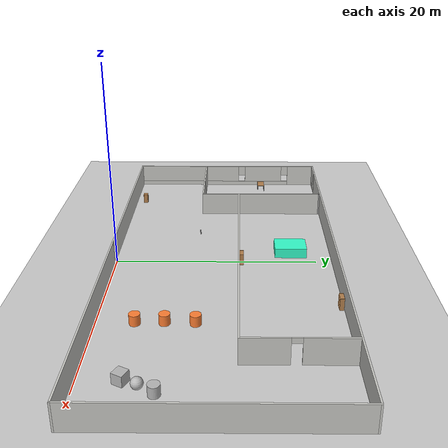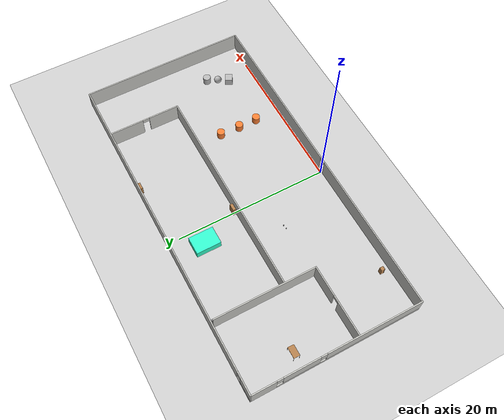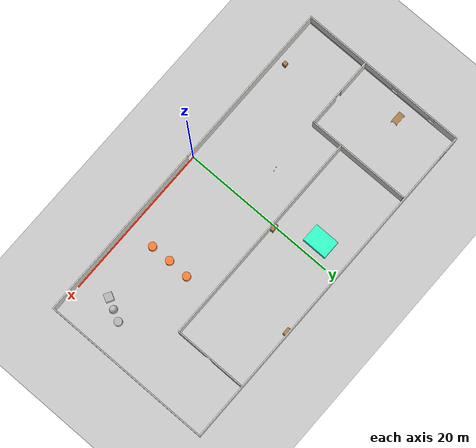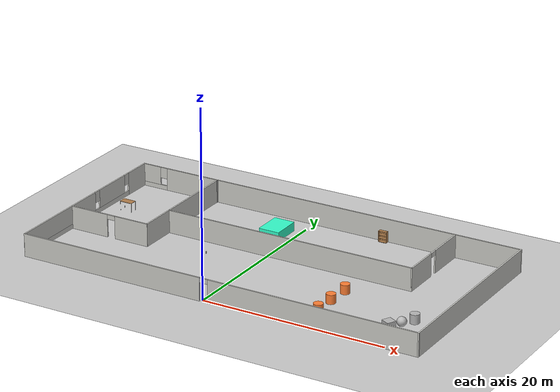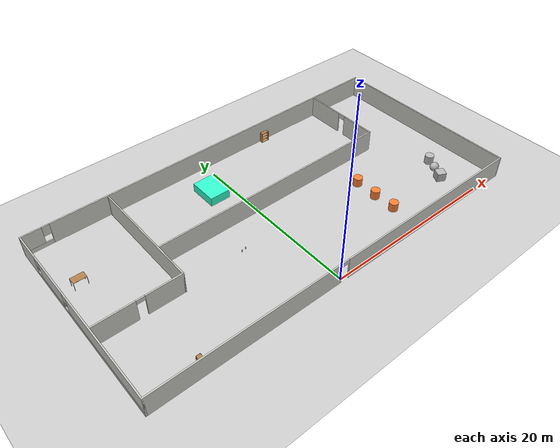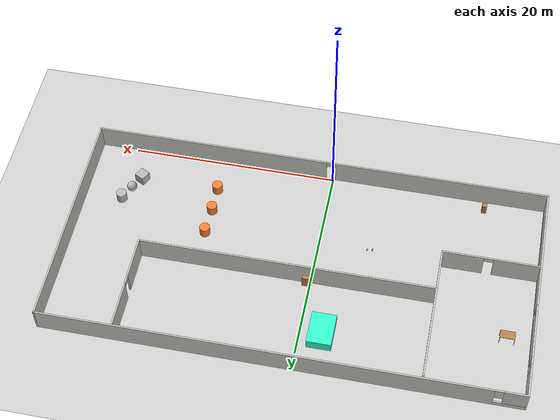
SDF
<sdf version="1.6">
 <world name="default">
  <model name="ground_plane">
   <static>1</static>
   <link name="link">
    <collision name="collision">
     <geometry><plane><normal>0 0 1</normal><size>100 100</size></plane></geometry>
     <surface><friction><ode><mu>100</mu><mu2>50</mu2></ode></friction></surface>
    </collision>
    <visual name="visual">
     <cast_shadows>0</cast_shadows>
     <geometry><plane><normal>0 0 1</normal><size>100 100</size></plane></geometry>
     <material>
      <script><uri>file://media/materials/scripts/gazebo.material</uri><name>Gazebo/Grey</name></script>
     </material>
    </visual>
   </link>
  </model>
  <gravity>0 0 -9.8</gravity>
  <magnetic_field>6e-06 2.3e-05 -4.2e-05</magnetic_field>
  <atmosphere type="adiabatic"/>
  <physics name="default_physics" default="0" type="ode">
   <max_step_size>0.001</max_step_size>
   <real_time_factor>1</real_time_factor>
   <real_time_update_rate>1000</real_time_update_rate>
  </physics>
  <scene><ambient>0.4 0.4 0.4 1</ambient><background>0.7 0.7 0.7 1</background><shadows>1</shadows></scene>
  <spherical_coordinates>
   <surface_model>EARTH_WGS84</surface_model>
   <latitude_deg>0</latitude_deg>
   <longitude_deg>0</longitude_deg>
   <elevation>0</elevation>
   <heading_deg>0</heading_deg>
  </spherical_coordinates>
  <model name="Surround">
   <pose>1.33795 10.7084 0 0 -0 0</pose>
   <link name="Wall_1">
    <pose>0 -10.925 0 0 -0 0</pose>
    <visual name="Wall_1_Visual_0">
     <pose>-11.9671 0 1.25 0 -0 0</pose>
     <geometry><box><size>20.8157 0.15 2.5</size></box></geometry>
     <material>
      <script><uri>file://media/materials/scripts/gazebo.material</uri><name>Gazebo/CeilingTiled</name></script>
      <ambient>1 1 1 1</ambient>
     </material>
    </visual>
    <collision name="Wall_1_Collision_0">
     <geometry><box><size>20.8157 0.15 2.5</size></box></geometry>
     <pose>-11.9671 0 1.25 0 -0 0</pose>
    </collision>
    <visual name="Wall_1_Visual_1">
     <pose>10.8579 0 1.25 0 -0 0</pose>
     <geometry><box><size>23.0343 0.15 2.5</size></box></geometry>
     <material>
      <script><uri>file://media/materials/scripts/gazebo.material</uri><name>Gazebo/CeilingTiled</name></script>
      <ambient>1 1 1 1</ambient>
     </material>
    </visual>
    <collision name="Wall_1_Collision_1">
     <geometry><box><size>23.0343 0.15 2.5</size></box></geometry>
     <pose>10.8579 0 1.25 0 -0 0</pose>
    </collision>
    <visual name="Wall_1_Visual_2">
     <pose>-1.10928 0 2.25 0 -0 0</pose>
     <geometry><box><size>0.9 0.15 0.5</size></box></geometry>
     <material>
      <script><uri>file://media/materials/scripts/gazebo.material</uri><name>Gazebo/CeilingTiled</name></script>
      <ambient>1 1 1 1</ambient>
     </material>
    </visual>
    <collision name="Wall_1_Collision_2">
     <geometry><box><size>0.9 0.15 0.5</size></box></geometry>
     <pose>-1.10928 0 2.25 0 -0 0</pose>
    </collision>
   </link>
   <link name="Wall_12">
    <collision name="Wall_12_Collision">
     <geometry><box><size>28.25 0.15 2.5</size></box></geometry>
     <pose>0 0 1.25 0 -0 0</pose>
    </collision>
    <visual name="Wall_12_Visual">
     <pose>0 0 1.25 0 -0 0</pose>
     <geometry><box><size>28.25 0.15 2.5</size></box></geometry>
     <material>
      <script><uri>file://media/materials/scripts/gazebo.material</uri><name>Gazebo/CeilingTiled</name></script>
      <ambient>1 1 1 1</ambient>
     </material>
    </visual>
    <pose>0.995703 1.50774 0 0 -0 0</pose>
   </link>
   <link name="Wall_13">
    <pose>15.0457 6.18274 0 0 -0 1.5708</pose>
    <visual name="Wall_13_Visual_0">
     <pose>-2.69981 0 1.25 0 -0 0</pose>
     <geometry><box><size>4.10038 0.15 2.5</size></box></geometry>
     <material>
      <script><uri>file://media/materials/scripts/gazebo.material</uri><name>Gazebo/CeilingTiled</name></script>
      <ambient>1 1 1 1</ambient>
     </material>
    </visual>
    <collision name="Wall_13_Collision_0">
     <geometry><box><size>4.10038 0.15 2.5</size></box></geometry>
     <pose>-2.69981 0 1.25 0 -0 0</pose>
    </collision>
    <visual name="Wall_13_Visual_1">
     <pose>2.50019 0 1.25 0 -0 0</pose>
     <geometry><box><size>4.49962 0.15 2.5</size></box></geometry>
     <material>
      <script><uri>file://media/materials/scripts/gazebo.material</uri><name>Gazebo/CeilingTiled</name></script>
      <ambient>1 1 1 1</ambient>
     </material>
    </visual>
    <collision name="Wall_13_Collision_1">
     <geometry><box><size>4.49962 0.15 2.5</size></box></geometry>
     <pose>2.50019 0 1.25 0 -0 0</pose>
    </collision>
    <visual name="Wall_13_Visual_2">
     <pose>-0.199616 0 2.25 0 -0 0</pose>
     <geometry><box><size>0.9 0.15 0.5</size></box></geometry>
     <material>
      <script><uri>file://media/materials/scripts/gazebo.material</uri><name>Gazebo/CeilingTiled</name></script>
      <ambient>1 1 1 1</ambient>
     </material>
    </visual>
    <collision name="Wall_13_Collision_2">
     <geometry><box><size>0.9 0.15 0.5</size></box></geometry>
     <pose>-0.199616 0 2.25 0 -0 0</pose>
    </collision>
   </link>
   <link name="Wall_2">
    <collision name="Wall_2_Collision">
     <geometry><box><size>22 0.15 2.5</size></box></geometry>
     <pose>0 0 1.25 0 -0 0</pose>
    </collision>
    <visual name="Wall_2_Visual">
     <pose>0 0 1.25 0 -0 0</pose>
     <geometry><box><size>22 0.15 2.5</size></box></geometry>
     <material>
      <script><uri>file://media/materials/scripts/gazebo.material</uri><name>Gazebo/CeilingTiled</name></script>
      <ambient>1 1 1 1</ambient>
     </material>
    </visual>
    <pose>22.3 0 0 0 -0 1.5708</pose>
   </link>
   <link name="Wall_3">
    <pose>0 10.925 0 0 -0 3.14159</pose>
    <visual name="Wall_3_Visual_0">
     <pose>-1.49293 0 1.25 0 -0 0</pose>
     <geometry><box><size>41.7641 0.15 2.5</size></box></geometry>
     <material>
      <script><uri>file://media/materials/scripts/gazebo.material</uri><name>Gazebo/CeilingTiled</name></script>
      <ambient>1 1 1 1</ambient>
     </material>
    </visual>
    <collision name="Wall_3_Collision_0">
     <geometry><box><size>41.7641 0.15 2.5</size></box></geometry>
     <pose>-1.49293 0 1.25 0 -0 0</pose>
    </collision>
    <visual name="Wall_3_Visual_1">
     <pose>20.8821 0 0.25 0 -0 0</pose>
     <geometry><box><size>2.98586 0.15 0.5</size></box></geometry>
     <material>
      <script><uri>file://media/materials/scripts/gazebo.material</uri><name>Gazebo/CeilingTiled</name></script>
      <ambient>1 1 1 1</ambient>
     </material>
    </visual>
    <collision name="Wall_3_Collision_1">
     <geometry><box><size>2.98586 0.15 0.5</size></box></geometry>
     <pose>20.8821 0 0.25 0 -0 0</pose>
    </collision>
    <visual name="Wall_3_Visual_2">
     <pose>21.2821 0 1.5 0 -0 0</pose>
     <geometry><box><size>2.18586 0.15 2</size></box></geometry>
     <material>
      <script><uri>file://media/materials/scripts/gazebo.material</uri><name>Gazebo/CeilingTiled</name></script>
      <ambient>1 1 1 1</ambient>
     </material>
    </visual>
    <collision name="Wall_3_Collision_2">
     <geometry><box><size>2.18586 0.15 2</size></box></geometry>
     <pose>21.2821 0 1.5 0 -0 0</pose>
    </collision>
    <visual name="Wall_3_Visual_3">
     <pose>19.7891 0 1.9 0 -0 0</pose>
     <geometry><box><size>0.8 0.15 1.2</size></box></geometry>
     <material>
      <script><uri>file://media/materials/scripts/gazebo.material</uri><name>Gazebo/CeilingTiled</name></script>
      <ambient>1 1 1 1</ambient>
     </material>
    </visual>
    <collision name="Wall_3_Collision_3">
     <geometry><box><size>0.8 0.15 1.2</size></box></geometry>
     <pose>19.7891 0 1.9 0 -0 0</pose>
    </collision>
   </link>
   <link name="Wall_4">
    <pose>-22.3 0 0 0 0 -1.5708</pose>
    <visual name="Wall_4_Visual_0">
     <pose>-9.3662 0 1.25 0 -0 0</pose>
     <geometry><box><size>3.2676 0.15 2.5</size></box></geometry>
     <material>
      <script><uri>file://media/materials/scripts/gazebo.material</uri><name>Gazebo/CeilingTiled</name></script>
      <ambient>1 1 1 1</ambient>
     </material>
    </visual>
    <collision name="Wall_4_Collision_0">
     <geometry><box><size>3.2676 0.15 2.5</size></box></geometry>
     <pose>-9.3662 0 1.25 0 -0 0</pose>
    </collision>
    <visual name="Wall_4_Visual_1">
     <pose>1.6338 0 0.25 0 -0 0</pose>
     <geometry><box><size>18.7324 0.15 0.5</size></box></geometry>
     <material>
      <script><uri>file://media/materials/scripts/gazebo.material</uri><name>Gazebo/CeilingTiled</name></script>
      <ambient>1 1 1 1</ambient>
     </material>
    </visual>
    <collision name="Wall_4_Collision_1">
     <geometry><box><size>18.7324 0.15 0.5</size></box></geometry>
     <pose>1.6338 0 0.25 0 -0 0</pose>
    </collision>
    <visual name="Wall_4_Visual_2">
     <pose>-4.60825 0 1.5 0 -0 0</pose>
     <geometry><box><size>4.64829 0.15 2</size></box></geometry>
     <material>
      <script><uri>file://media/materials/scripts/gazebo.material</uri><name>Gazebo/CeilingTiled</name></script>
      <ambient>1 1 1 1</ambient>
     </material>
    </visual>
    <collision name="Wall_4_Collision_2">
     <geometry><box><size>4.64829 0.15 2</size></box></geometry>
     <pose>-4.60825 0 1.5 0 -0 0</pose>
    </collision>
    <visual name="Wall_4_Visual_3">
     <pose>4.75795 0 1.5 0 -0 0</pose>
     <geometry><box><size>12.4841 0.15 2</size></box></geometry>
     <material>
      <script><uri>file://media/materials/scripts/gazebo.material</uri><name>Gazebo/CeilingTiled</name></script>
      <ambient>1 1 1 1</ambient>
     </material>
    </visual>
    <collision name="Wall_4_Collision_3">
     <geometry><box><size>12.4841 0.15 2</size></box></geometry>
     <pose>4.75795 0 1.5 0 -0 0</pose>
    </collision>
    <visual name="Wall_4_Visual_4">
     <pose>-7.3324 0 1.9 0 -0 0</pose>
     <geometry><box><size>0.8 0.15 1.2</size></box></geometry>
     <material>
      <script><uri>file://media/materials/scripts/gazebo.material</uri><name>Gazebo/CeilingTiled</name></script>
      <ambient>1 1 1 1</ambient>
     </material>
    </visual>
    <collision name="Wall_4_Collision_4">
     <geometry><box><size>0.8 0.15 1.2</size></box></geometry>
     <pose>-7.3324 0 1.9 0 -0 0</pose>
    </collision>
    <visual name="Wall_4_Visual_5">
     <pose>-1.8841 0 1.9 0 -0 0</pose>
     <geometry><box><size>0.8 0.15 1.2</size></box></geometry>
     <material>
      <script><uri>file://media/materials/scripts/gazebo.material</uri><name>Gazebo/CeilingTiled</name></script>
      <ambient>1 1 1 1</ambient>
     </material>
    </visual>
    <collision name="Wall_4_Collision_5">
     <geometry><box><size>0.8 0.15 1.2</size></box></geometry>
     <pose>-1.8841 0 1.9 0 -0 0</pose>
    </collision>
   </link>
   <link name="Wall_6">
    <pose>-17.6449 -2.64435 0 0 -0 0</pose>
    <visual name="Wall_6_Visual_0">
     <pose>-2.43922 0 1.25 0 -0 0</pose>
     <geometry><box><size>4.37157 0.15 2.5</size></box></geometry>
     <material>
      <script><uri>file://media/materials/scripts/gazebo.material</uri><name>Gazebo/CeilingTiled</name></script>
      <ambient>1 1 1 1</ambient>
     </material>
    </visual>
    <collision name="Wall_6_Collision_0">
     <geometry><box><size>4.37157 0.15 2.5</size></box></geometry>
     <pose>-2.43922 0 1.25 0 -0 0</pose>
    </collision>
    <visual name="Wall_6_Visual_1">
     <pose>2.63578 0 1.25 0 -0 0</pose>
     <geometry><box><size>3.97843 0.15 2.5</size></box></geometry>
     <material>
      <script><uri>file://media/materials/scripts/gazebo.material</uri><name>Gazebo/CeilingTiled</name></script>
      <ambient>1 1 1 1</ambient>
     </material>
    </visual>
    <collision name="Wall_6_Collision_1">
     <geometry><box><size>3.97843 0.15 2.5</size></box></geometry>
     <pose>2.63578 0 1.25 0 -0 0</pose>
    </collision>
    <visual name="Wall_6_Visual_2">
     <pose>0.196568 0 2.25 0 -0 0</pose>
     <geometry><box><size>0.9 0.15 0.5</size></box></geometry>
     <material>
      <script><uri>file://media/materials/scripts/gazebo.material</uri><name>Gazebo/CeilingTiled</name></script>
      <ambient>1 1 1 1</ambient>
     </material>
    </visual>
    <collision name="Wall_6_Collision_2">
     <geometry><box><size>0.9 0.15 0.5</size></box></geometry>
     <pose>0.196568 0 2.25 0 -0 0</pose>
    </collision>
   </link>
   <link name="Wall_7">
    <collision name="Wall_7_Collision">
     <geometry><box><size>13.5 0.15 2.5</size></box></geometry>
     <pose>0 0 1.25 0 -0 0</pose>
    </collision>
    <visual name="Wall_7_Visual">
     <pose>0 0 1.25 0 -0 0</pose>
     <geometry><box><size>13.5 0.15 2.5</size></box></geometry>
     <material>
      <script><uri>file://media/materials/scripts/gazebo.material</uri><name>Gazebo/CeilingTiled</name></script>
      <ambient>1 1 1 1</ambient>
     </material>
    </visual>
    <pose>-13.0949 4.03065 0 0 -0 1.5708</pose>
   </link>
   <link name="Wall_9">
    <collision name="Wall_9_Collision">
     <geometry><box><size>0.25 0.15 2.5</size></box></geometry>
     <pose>0 0 1.25 0 -0 0</pose>
    </collision>
    <visual name="Wall_9_Visual">
     <pose>0 0 1.25 0 -0 0</pose>
     <geometry><box><size>0.25 0.15 2.5</size></box></geometry>
     <material>
      <script><uri>file://media/materials/scripts/gazebo.material</uri><name>Gazebo/Grey</name></script>
      <ambient>1 1 1 1</ambient>
     </material>
    </visual>
    <pose>-13.0819 10.7539 0 0 -0 1.309</pose>
   </link>
   <static>1</static>
  </model>
  <model name="table">
   <static>0</static>
   <link name="link">
    <collision name="surface">
     <pose>0 0 1 0 -0 0</pose>
     <geometry><box><size>1.5 0.8 0.03</size></box></geometry>
     <surface><friction><ode><mu>0.6</mu><mu2>0.6</mu2></ode></friction></surface>
    </collision>
    <visual name="visual1">
     <pose>0 0 1 0 -0 0</pose>
     <geometry><box><size>1.4 0.8 0.04</size></box></geometry>
     <material>
      <script><uri>file://media/materials/scripts/gazebo.material</uri><name>Gazebo/Wood</name></script>
     </material>
    </visual>
    <collision name="front_left_leg">
     <pose>0.68 0.38 0.5 0 -0 0</pose>
     <geometry><cylinder><radius>0.02</radius><length>1</length></cylinder></geometry>
    </collision>
    <visual name="front_left_leg">
     <pose>0.68 0.38 0.5 0 -0 0</pose>
     <geometry><cylinder><radius>0.02</radius><length>1</length></cylinder></geometry>
     <material>
      <script><uri>file://media/materials/scripts/gazebo.material</uri><name>Gazebo/Grey</name></script>
     </material>
    </visual>
    <collision name="front_right_leg">
     <pose>0.68 -0.38 0.5 0 -0 0</pose>
     <geometry><cylinder><radius>0.02</radius><length>1</length></cylinder></geometry>
    </collision>
    <visual name="front_right_leg">
     <pose>0.68 -0.38 0.5 0 -0 0</pose>
     <geometry><cylinder><radius>0.02</radius><length>1</length></cylinder></geometry>
     <material>
      <script><uri>file://media/materials/scripts/gazebo.material</uri><name>Gazebo/Grey</name></script>
     </material>
    </visual>
    <collision name="back_right_leg">
     <pose>-0.68 -0.38 0.5 0 -0 0</pose>
     <geometry><cylinder><radius>0.02</radius><length>1</length></cylinder></geometry>
    </collision>
    <visual name="back_right_leg">
     <pose>-0.68 -0.38 0.5 0 -0 0</pose>
     <geometry><cylinder><radius>0.02</radius><length>1</length></cylinder></geometry>
     <material>
      <script><uri>file://media/materials/scripts/gazebo.material</uri><name>Gazebo/Grey</name></script>
     </material>
    </visual>
    <collision name="back_left_leg">
     <pose>-0.68 0.38 0.5 0 -0 0</pose>
     <geometry><cylinder><radius>0.02</radius><length>1</length></cylinder></geometry>
    </collision>
    <visual name="back_left_leg">
     <pose>-0.68 0.38 0.5 0 -0 0</pose>
     <geometry><cylinder><radius>0.02</radius><length>1</length></cylinder></geometry>
     <material>
      <script><uri>file://media/materials/scripts/gazebo.material</uri><name>Gazebo/Grey</name></script>
     </material>
    </visual>
    <inertial>
     <inertia><ixx>1</ixx><ixy>0</ixy><ixz>0</ixz><iyy>1</iyy><iyz>0</iyz><izz>1</izz></inertia>
     <mass>1</mass>
    </inertial>
   </link>
   <pose>-18.7022 14.9729 -0.016772 -0.00113 0.000326 -4e-06</pose>
  </model>
  <model name="bookshelf">
   <static>1</static>
   <link name="link">
    <inertial><mass>1</mass></inertial>
    <collision name="back">
     <pose>0 0.005 0.6 0 -0 0</pose>
     <geometry><box><size>0.9 0.01 1.2</size></box></geometry>
    </collision>
    <visual name="visual1">
     <pose>0 0.005 0.6 0 -0 0</pose>
     <geometry><box><size>0.9 0.01 1.2</size></box></geometry>
     <material>
      <script><uri>file://media/materials/scripts/gazebo.material</uri><name>Gazebo/Wood</name></script>
     </material>
    </visual>
    <collision name="left_side">
     <pose>0.45 -0.195 0.6 0 -0 0</pose>
     <geometry><box><size>0.02 0.4 1.2</size></box></geometry>
    </collision>
    <visual name="visual2">
     <pose>0.45 -0.195 0.6 0 -0 0</pose>
     <geometry><box><size>0.02 0.4 1.2</size></box></geometry>
     <material>
      <script><uri>file://media/materials/scripts/gazebo.material</uri><name>Gazebo/Wood</name></script>
     </material>
    </visual>
    <collision name="right_side">
     <pose>-0.45 -0.195 0.6 0 -0 0</pose>
     <geometry><box><size>0.02 0.4 1.2</size></box></geometry>
    </collision>
    <visual name="visual3">
     <pose>-0.45 -0.195 0.6 0 -0 0</pose>
     <geometry><box><size>0.02 0.4 1.2</size></box></geometry>
     <material>
      <script><uri>file://media/materials/scripts/gazebo.material</uri><name>Gazebo/Wood</name></script>
     </material>
    </visual>
    <collision name="bottom">
     <pose>0 -0.195 0.03 0 -0 0</pose>
     <geometry><box><size>0.88 0.4 0.06</size></box></geometry>
    </collision>
    <visual name="visual4">
     <pose>0 -0.195 0.03 0 -0 0</pose>
     <geometry><box><size>0.88 0.4 0.06</size></box></geometry>
     <material>
      <script><uri>file://media/materials/scripts/gazebo.material</uri><name>Gazebo/Wood</name></script>
     </material>
    </visual>
    <collision name="top">
     <pose>0 -0.195 1.19 0 -0 0</pose>
     <geometry><box><size>0.88 0.4 0.02</size></box></geometry>
    </collision>
    <visual name="visual5">
     <pose>0 -0.195 1.19 0 -0 0</pose>
     <geometry><box><size>0.88 0.4 0.02</size></box></geometry>
     <material>
      <script><uri>file://media/materials/scripts/gazebo.material</uri><name>Gazebo/Wood</name></script>
     </material>
    </visual>
    <collision name="low_shelf">
     <pose>0 -0.195 0.43 0 -0 0</pose>
     <geometry><box><size>0.88 0.4 0.02</size></box></geometry>
    </collision>
    <visual name="visual6">
     <pose>0 -0.195 0.43 0 -0 0</pose>
     <geometry><box><size>0.88 0.4 0.02</size></box></geometry>
     <material>
      <script><uri>file://media/materials/scripts/gazebo.material</uri><name>Gazebo/Wood</name></script>
     </material>
    </visual>
    <collision name="high_shelf">
     <pose>0 -0.195 0.8 0 -0 0</pose>
     <geometry><box><size>0.88 0.4 0.02</size></box></geometry>
    </collision>
    <visual name="visual7">
     <pose>0 -0.195 0.8 0 -0 0</pose>
     <geometry><box><size>0.88 0.4 0.02</size></box></geometry>
     <material>
      <script><uri>file://media/materials/scripts/gazebo.material</uri><name>Gazebo/Wood</name></script>
     </material>
    </visual>
   </link>
   <pose>8.34522 21.5053 0 0 -0 0</pose>
  </model>
  <model name="bookshelf_0">
   <static>1</static>
   <link name="link">
    <inertial><mass>1</mass></inertial>
    <collision name="back">
     <pose>0 0.005 0.6 0 -0 0</pose>
     <geometry><box><size>0.9 0.01 1.2</size></box></geometry>
    </collision>
    <visual name="visual1">
     <pose>0 0.005 0.6 0 -0 0</pose>
     <geometry><box><size>0.9 0.01 1.2</size></box></geometry>
     <material>
      <script><uri>file://media/materials/scripts/gazebo.material</uri><name>Gazebo/Wood</name></script>
     </material>
    </visual>
    <collision name="left_side">
     <pose>0.45 -0.195 0.6 0 -0 0</pose>
     <geometry><box><size>0.02 0.4 1.2</size></box></geometry>
    </collision>
    <visual name="visual2">
     <pose>0.45 -0.195 0.6 0 -0 0</pose>
     <geometry><box><size>0.02 0.4 1.2</size></box></geometry>
     <material>
      <script><uri>file://media/materials/scripts/gazebo.material</uri><name>Gazebo/Wood</name></script>
     </material>
    </visual>
    <collision name="right_side">
     <pose>-0.45 -0.195 0.6 0 -0 0</pose>
     <geometry><box><size>0.02 0.4 1.2</size></box></geometry>
    </collision>
    <visual name="visual3">
     <pose>-0.45 -0.195 0.6 0 -0 0</pose>
     <geometry><box><size>0.02 0.4 1.2</size></box></geometry>
     <material>
      <script><uri>file://media/materials/scripts/gazebo.material</uri><name>Gazebo/Wood</name></script>
     </material>
    </visual>
    <collision name="bottom">
     <pose>0 -0.195 0.03 0 -0 0</pose>
     <geometry><box><size>0.88 0.4 0.06</size></box></geometry>
    </collision>
    <visual name="visual4">
     <pose>0 -0.195 0.03 0 -0 0</pose>
     <geometry><box><size>0.88 0.4 0.06</size></box></geometry>
     <material>
      <script><uri>file://media/materials/scripts/gazebo.material</uri><name>Gazebo/Wood</name></script>
     </material>
    </visual>
    <collision name="top">
     <pose>0 -0.195 1.19 0 -0 0</pose>
     <geometry><box><size>0.88 0.4 0.02</size></box></geometry>
    </collision>
    <visual name="visual5">
     <pose>0 -0.195 1.19 0 -0 0</pose>
     <geometry><box><size>0.88 0.4 0.02</size></box></geometry>
     <material>
      <script><uri>file://media/materials/scripts/gazebo.material</uri><name>Gazebo/Wood</name></script>
     </material>
    </visual>
    <collision name="low_shelf">
     <pose>0 -0.195 0.43 0 -0 0</pose>
     <geometry><box><size>0.88 0.4 0.02</size></box></geometry>
    </collision>
    <visual name="visual6">
     <pose>0 -0.195 0.43 0 -0 0</pose>
     <geometry><box><size>0.88 0.4 0.02</size></box></geometry>
     <material>
      <script><uri>file://media/materials/scripts/gazebo.material</uri><name>Gazebo/Wood</name></script>
     </material>
    </visual>
    <collision name="high_shelf">
     <pose>0 -0.195 0.8 0 -0 0</pose>
     <geometry><box><size>0.88 0.4 0.02</size></box></geometry>
    </collision>
    <visual name="visual7">
     <pose>0 -0.195 0.8 0 -0 0</pose>
     <geometry><box><size>0.88 0.4 0.02</size></box></geometry>
     <material>
      <script><uri>file://media/materials/scripts/gazebo.material</uri><name>Gazebo/Wood</name></script>
     </material>
    </visual>
   </link>
   <pose>0.263551 12.6908 0 0 -0 0</pose>
  </model>
  <model name="beer">
   <link name="link">
    <pose>0 0 0.115 0 -0 0</pose>
    <inertial>
     <mass>0.39</mass>
     <inertia><ixx>0.00058</ixx><ixy>0</ixy><ixz>0</ixz><iyy>0.00058</iyy><iyz>0</iyz><izz>0.00019</izz></inertia>
    </inertial>
    <collision name="collision">
     <geometry><cylinder><radius>0.055</radius><length>0.23</length></cylinder></geometry>
    </collision>
    <visual name="visual">
     <geometry><cylinder><radius>0.055</radius><length>0.23</length></cylinder></geometry>
     <material>
      <script>
       <uri>model://beer/materials/scripts</uri>
       <uri>model://beer/materials/textures</uri>
       <name>Beer/Diffuse</name>
      </script>
     </material>
    </visual>
   </link>
   <pose>-4.72097 8.17136 0.775001 -2.2e-05 -2e-06 0.003577</pose>
  </model>
  <model name="beer_clone">
   <link name="link">
    <pose>0 0 0.115 0 -0 0</pose>
    <inertial>
     <mass>0.39</mass>
     <inertia><ixx>0.00058</ixx><ixy>0</ixy><ixz>0</ixz><iyy>0.00058</iyy><iyz>0</iyz><izz>0.00019</izz></inertia>
    </inertial>
    <collision name="collision">
     <geometry><cylinder><radius>0.055</radius><length>0.23</length></cylinder></geometry>
    </collision>
    <visual name="visual">
     <geometry><cylinder><radius>0.055</radius><length>0.23</length></cylinder></geometry>
     <material>
      <script>
       <uri>model://beer/materials/scripts</uri>
       <uri>model://beer/materials/textures</uri>
       <name>Beer/Diffuse</name>
      </script>
     </material>
    </visual>
   </link>
   <pose>-1.53445 16.078 -7e-06 -1e-06 -0 0.000125</pose>
  </model>
  <model name="beer_0">
   <link name="link">
    <pose>0 0 0.115 0 -0 0</pose>
    <inertial>
     <mass>0.39</mass>
     <inertia><ixx>0.00058</ixx><ixy>0</ixy><ixz>0</ixz><iyy>0.00058</iyy><iyz>0</iyz><izz>0.00019</izz></inertia>
    </inertial>
    <collision name="collision">
     <geometry><cylinder><radius>0.055</radius><length>0.23</length></cylinder></geometry>
    </collision>
    <visual name="visual">
     <geometry><cylinder><radius>0.055</radius><length>0.23</length></cylinder></geometry>
     <material>
      <script>
       <uri>model://beer/materials/scripts</uri>
       <uri>model://beer/materials/textures</uri>
       <name>Beer/Diffuse</name>
      </script>
     </material>
    </visual>
   </link>
   <pose>-5.21942 8.09536 0.774992 2.4e-05 1.6e-05 0.00042</pose>
  </model>
  <model name="cabinet">
   <static>1</static>
   <link name="cabinet_bottom_plate">
    <inertial>
     <pose>0 0 -1 0 -0 0</pose>
     <inertia><ixx>2.05</ixx><ixy>0</ixy><ixz>0</ixz><iyy>2.05</iyy><iyz>0</iyz><izz>2.05</izz></inertia>
     <mass>25</mass>
    </inertial>
    <collision name="cabinet_bottom_plate_geom">
     <pose>0 0 0.01 0 -0 0</pose>
     <geometry><box><size>0.45 0.45 0.02</size></box></geometry>
    </collision>
    <visual name="cabinet_bottom_plate_geom_visual">
     <pose>0 0 0.01 0 -0 0</pose>
     <geometry><box><size>0.45 0.45 0.02</size></box></geometry>
     <material>
      <script><uri>file://media/materials/scripts/gazebo.material</uri><name>Gazebo/Wood</name></script>
     </material>
    </visual>
    <collision name="cabinet_bottom_plate_geom_cabinet_back_plate">
     <pose>0.235 0 0.51 0 -0 0</pose>
     <geometry><box><size>0.02 0.45 1.02</size></box></geometry>
    </collision>
    <visual name="cabinet_bottom_plate_geom_cabinet_back_plate_visual">
     <pose>0.235 0 0.51 0 -0 0</pose>
     <geometry><box><size>0.02 0.45 1.02</size></box></geometry>
     <material>
      <script><uri>file://media/materials/scripts/gazebo.material</uri><name>Gazebo/Wood</name></script>
     </material>
    </visual>
    <collision name="cabinet_bottom_plate_geom_cabinet_left_plate">
     <pose>0 0.235 0.51 0 -0 0</pose>
     <geometry><box><size>0.45 0.02 1.02</size></box></geometry>
    </collision>
    <visual name="cabinet_bottom_plate_geom_cabinet_left_plate_visual">
     <pose>0 0.235 0.51 0 -0 0</pose>
     <geometry><box><size>0.45 0.02 1.02</size></box></geometry>
     <material>
      <script><uri>file://media/materials/scripts/gazebo.material</uri><name>Gazebo/Wood</name></script>
     </material>
    </visual>
    <collision name="cabinet_bottom_plate_geom_cabinet_middle_plate">
     <pose>0 0 0.51 0 -0 0</pose>
     <geometry><box><size>0.45 0.45 0.02</size></box></geometry>
    </collision>
    <visual name="cabinet_bottom_plate_geom_cabinet_middle_plate_visual">
     <pose>0 0 0.51 0 -0 0</pose>
     <geometry><box><size>0.45 0.45 0.02</size></box></geometry>
     <material>
      <script><uri>file://media/materials/scripts/gazebo.material</uri><name>Gazebo/Wood</name></script>
     </material>
    </visual>
    <collision name="cabinet_bottom_plate_geom_cabinet_right_plate">
     <pose>0 -0.235 0.51 0 -0 0</pose>
     <geometry><box><size>0.45 0.02 1.02</size></box></geometry>
    </collision>
    <visual name="cabinet_bottom_plate_geom_cabinet_right_plate_visual">
     <pose>0 -0.235 0.51 0 -0 0</pose>
     <geometry><box><size>0.45 0.02 1.02</size></box></geometry>
     <material>
      <script><uri>file://media/materials/scripts/gazebo.material</uri><name>Gazebo/Wood</name></script>
     </material>
    </visual>
    <collision name="cabinet_bottom_plate_geom_cabinet_top_plate">
     <pose>0 0 1.01 0 -0 0</pose>
     <geometry><box><size>0.45 0.45 0.02</size></box></geometry>
    </collision>
    <visual name="cabinet_bottom_plate_geom_cabinet_top_plate_visual">
     <pose>0 0 1.01 0 -0 0</pose>
     <geometry><box><size>0.45 0.45 0.02</size></box></geometry>
     <material>
      <script><uri>file://media/materials/scripts/gazebo.material</uri><name>Gazebo/Wood</name></script>
     </material>
    </visual>
   </link>
   <pose>-15.1417 0.899399 0 0 -0 0</pose>
  </model>
  <model name="unit_cylinder_0_0">
   <link name="link">
    <inertial>
     <mass>1</mass>
     <inertia><ixx>0.145833</ixx><ixy>0</ixy><ixz>0</ixz><iyy>0.145833</iyy><iyz>0</iyz><izz>0.125</izz></inertia>
    </inertial>
    <visual name="visual">
     <geometry><cylinder><radius>0.5</radius><length>1</length></cylinder></geometry>
     <material>
      <script><name>Gazebo/Grey</name><uri>file://media/materials/scripts/gazebo.material</uri></script>
      <ambient>1 0.5 0.2 1</ambient>
      <diffuse>0.7 0.7 0.7 1</diffuse>
      <specular>0.1 0.5 1 1</specular>
      <emissive>0 0 0 1</emissive>
      <shader type="vertex"><normal_map>__default__</normal_map></shader>
     </material>
    </visual>
    <collision name="collision">
     <geometry><cylinder><radius>0.5</radius><length>1</length></cylinder></geometry>
     <surface>
      <friction>
       <ode><mu>1</mu><mu2>1</mu2><fdir1>0 0 0</fdir1><slip1>0</slip1><slip2>0</slip2></ode>
       <torsional>
        <coefficient>1</coefficient>
        <patch_radius>0</patch_radius>
        <surface_radius>0</surface_radius>
        <use_patch_radius>1</use_patch_radius>
        <ode><slip>0</slip></ode>
       </torsional>
      </friction>
      <bounce><restitution_coefficient>0</restitution_coefficient><threshold>1e+06</threshold></bounce>
      <contact>
       <collide_without_contact>0</collide_without_contact>
       <collide_without_contact_bitmask>1</collide_without_contact_bitmask>
       <collide_bitmask>1</collide_bitmask>
       <ode>
        <soft_cfm>0</soft_cfm>
        <soft_erp>0.2</soft_erp>
        <kp>1e+13</kp>
        <kd>1</kd>
        <max_vel>0.01</max_vel>
        <min_depth>0</min_depth>
       </ode>
       <bullet>
        <split_impulse>1</split_impulse>
        <split_impulse_penetration_threshold>-0.01</split_impulse_penetration_threshold>
        <soft_cfm>0</soft_cfm>
        <soft_erp>0.2</soft_erp>
        <kp>1e+13</kp>
        <kd>1</kd>
       </bullet>
      </contact>
     </surface>
    </collision>
   </link>
   <static>0</static>
   <pose>11 8.58199 0.499993 -3e-06 -4e-06 -0</pose>
  </model>
  <model name="unit_cylinder_0_0_clone">
   <link name="link">
    <inertial>
     <mass>1</mass>
     <inertia><ixx>0.145833</ixx><ixy>0</ixy><ixz>0</ixz><iyy>0.145833</iyy><iyz>0</iyz><izz>0.125</izz></inertia>
    </inertial>
    <visual name="visual">
     <geometry><cylinder><radius>0.5</radius><length>1</length></cylinder></geometry>
     <material>
      <script><name>Gazebo/Grey</name><uri>file://media/materials/scripts/gazebo.material</uri></script>
      <ambient>1 0.5 0.2 1</ambient>
      <diffuse>0.7 0.7 0.7 1</diffuse>
      <specular>0.1 0.5 1 1</specular>
      <emissive>0 0 0 1</emissive>
      <shader type="vertex"><normal_map>__default__</normal_map></shader>
     </material>
    </visual>
    <collision name="collision">
     <geometry><cylinder><radius>0.5</radius><length>1</length></cylinder></geometry>
     <surface>
      <friction>
       <ode><mu>1</mu><mu2>1</mu2><fdir1>0 0 0</fdir1><slip1>0</slip1><slip2>0</slip2></ode>
       <torsional>
        <coefficient>1</coefficient>
        <patch_radius>0</patch_radius>
        <surface_radius>0</surface_radius>
        <use_patch_radius>1</use_patch_radius>
        <ode><slip>0</slip></ode>
       </torsional>
      </friction>
      <bounce><restitution_coefficient>0</restitution_coefficient><threshold>1e+06</threshold></bounce>
      <contact>
       <collide_without_contact>0</collide_without_contact>
       <collide_without_contact_bitmask>1</collide_without_contact_bitmask>
       <collide_bitmask>1</collide_bitmask>
       <ode>
        <soft_cfm>0</soft_cfm>
        <soft_erp>0.2</soft_erp>
        <kp>1e+13</kp>
        <kd>1</kd>
        <max_vel>0.01</max_vel>
        <min_depth>0</min_depth>
       </ode>
       <bullet>
        <split_impulse>1</split_impulse>
        <split_impulse_penetration_threshold>-0.01</split_impulse_penetration_threshold>
        <soft_cfm>0</soft_cfm>
        <soft_erp>0.2</soft_erp>
        <kp>1e+13</kp>
        <kd>1</kd>
       </bullet>
      </contact>
     </surface>
    </collision>
   </link>
   <static>0</static>
   <pose>10.9113 5.92978 0.499991 -3e-06 -4e-06 -0</pose>
  </model>
  <model name="unit_cylinder_0_0_clone_0">
   <link name="link">
    <inertial>
     <mass>1</mass>
     <inertia><ixx>0.145833</ixx><ixy>0</ixy><ixz>0</ixz><iyy>0.145833</iyy><iyz>0</iyz><izz>0.125</izz></inertia>
    </inertial>
    <visual name="visual">
     <geometry><cylinder><radius>0.5</radius><length>1</length></cylinder></geometry>
     <material>
      <script><name>Gazebo/Grey</name><uri>file://media/materials/scripts/gazebo.material</uri></script>
      <ambient>1 0.5 0.2 1</ambient>
      <diffuse>0.7 0.7 0.7 1</diffuse>
      <specular>0.1 0.5 1 1</specular>
      <emissive>0 0 0 1</emissive>
      <shader type="vertex"><normal_map>__default__</normal_map></shader>
     </material>
    </visual>
    <collision name="collision">
     <geometry><cylinder><radius>0.5</radius><length>1</length></cylinder></geometry>
     <surface>
      <friction>
       <ode><mu>1</mu><mu2>1</mu2><fdir1>0 0 0</fdir1><slip1>0</slip1><slip2>0</slip2></ode>
       <torsional>
        <coefficient>1</coefficient>
        <patch_radius>0</patch_radius>
        <surface_radius>0</surface_radius>
        <use_patch_radius>1</use_patch_radius>
        <ode><slip>0</slip></ode>
       </torsional>
      </friction>
      <bounce><restitution_coefficient>0</restitution_coefficient><threshold>1e+06</threshold></bounce>
      <contact>
       <collide_without_contact>0</collide_without_contact>
       <collide_without_contact_bitmask>1</collide_without_contact_bitmask>
       <collide_bitmask>1</collide_bitmask>
       <ode>
        <soft_cfm>0</soft_cfm>
        <soft_erp>0.2</soft_erp>
        <kp>1e+13</kp>
        <kd>1</kd>
        <max_vel>0.01</max_vel>
        <min_depth>0</min_depth>
       </ode>
       <bullet>
        <split_impulse>1</split_impulse>
        <split_impulse_penetration_threshold>-0.01</split_impulse_penetration_threshold>
        <soft_cfm>0</soft_cfm>
        <soft_erp>0.2</soft_erp>
        <kp>1e+13</kp>
        <kd>1</kd>
       </bullet>
      </contact>
     </surface>
    </collision>
   </link>
   <static>0</static>
   <pose>10.9471 3.38411 0.499993 -3e-06 -4e-06 -0</pose>
  </model>
  <model name="unit_box_0_0">
   <link name="link">
    <inertial>
     <mass>1</mass>
     <inertia>
      <ixx>0.166667</ixx>
      <ixy>0</ixy>
      <ixz>0</ixz>
      <iyy>0.166667</iyy>
      <iyz>0</iyz>
      <izz>0.166667</izz>
     </inertia>
    </inertial>
    <visual name="visual">
     <geometry><box><size>2.32888 3.22374 1</size></box></geometry>
     <material>
      <script><name>Gazebo/Grey</name><uri>file://media/materials/scripts/gazebo.material</uri></script>
      <ambient>0.2 1 0.8 1</ambient>
      <diffuse>0.7 0.7 0.7 1</diffuse>
      <specular>0.01 0.01 0.01 1</specular>
      <emissive>0 0 0 1</emissive>
      <shader type="vertex"><normal_map>__default__</normal_map></shader>
     </material>
    </visual>
    <collision name="collision">
     <geometry><box><size>2.32888 3.22374 1</size></box></geometry>
     <surface>
      <friction>
       <ode><mu>1</mu><mu2>1</mu2><fdir1>0 0 0</fdir1><slip1>0</slip1><slip2>0</slip2></ode>
       <torsional>
        <coefficient>1</coefficient>
        <patch_radius>0</patch_radius>
        <surface_radius>0</surface_radius>
        <use_patch_radius>1</use_patch_radius>
        <ode><slip>0</slip></ode>
       </torsional>
      </friction>
      <bounce><restitution_coefficient>0</restitution_coefficient><threshold>1e+06</threshold></bounce>
      <contact>
       <collide_without_contact>0</collide_without_contact>
       <collide_without_contact_bitmask>1</collide_without_contact_bitmask>
       <collide_bitmask>1</collide_bitmask>
       <ode>
        <soft_cfm>0</soft_cfm>
        <soft_erp>0.2</soft_erp>
        <kp>1e+13</kp>
        <kd>1</kd>
        <max_vel>0.01</max_vel>
        <min_depth>0</min_depth>
       </ode>
       <bullet>
        <split_impulse>1</split_impulse>
        <split_impulse_penetration_threshold>-0.01</split_impulse_penetration_threshold>
        <soft_cfm>0</soft_cfm>
        <soft_erp>0.2</soft_erp>
        <kp>1e+13</kp>
        <kd>1</kd>
       </bullet>
      </contact>
     </surface>
    </collision>
   </link>
   <static>0</static>
   <pose>-2.03424 17.5096 0.5 0 -0 0</pose>
  </model>
  <model name="textured_shapes">
   <pose>19.264 4.79561 0.5 0 0 -0.48323</pose>
   <link name="box">
    <pose>0 -1.5 0 0 -0 0</pose>
    <collision name="collision"><geometry><box><size>1 1 1</size></box></geometry></collision>
    <visual name="visual">
     <geometry><box><size>1 1 1</size></box></geometry>
     <material>
      <script>
       <uri>model://textured_shapes/materials/scripts</uri>
       <uri>model://textured_shapes/materials/textures</uri>
       <name>TexturedShape/Squares</name>
      </script>
     </material>
    </visual>
    <inertial>
     <inertia><ixx>1</ixx><ixy>0</ixy><ixz>0</ixz><iyy>1</iyy><iyz>0</iyz><izz>1</izz></inertia>
     <mass>1</mass>
    </inertial>
   </link>
   <link name="sphere">
    <collision name="collision"><geometry><sphere><radius>0.5</radius></sphere></geometry></collision>
    <visual name="visual">
     <geometry><sphere><radius>0.5</radius></sphere></geometry>
     <material>
      <script>
       <uri>model://textured_shapes/materials/scripts</uri>
       <uri>model://textured_shapes/materials/textures</uri>
       <name>TexturedShape/Squares</name>
      </script>
     </material>
    </visual>
    <inertial>
     <inertia><ixx>1</ixx><ixy>0</ixy><ixz>0</ixz><iyy>1</iyy><iyz>0</iyz><izz>1</izz></inertia>
     <mass>1</mass>
    </inertial>
   </link>
   <link name="cylinder">
    <pose>0 1.5 0 0 -0 0</pose>
    <collision name="collision">
     <geometry><cylinder><radius>0.5</radius><length>1</length></cylinder></geometry>
    </collision>
    <visual name="visual">
     <geometry><cylinder><radius>0.5</radius><length>1</length></cylinder></geometry>
     <material>
      <script>
       <uri>model://textured_shapes/materials/scripts</uri>
       <uri>model://textured_shapes/materials/textures</uri>
       <name>TexturedShape/Squares</name>
      </script>
     </material>
    </visual>
    <inertial>
     <inertia><ixx>1</ixx><ixy>0</ixy><ixz>0</ixz><iyy>1</iyy><iyz>0</iyz><izz>1</izz></inertia>
     <mass>1</mass>
    </inertial>
   </link>
  </model>
 </world>
</sdf>
